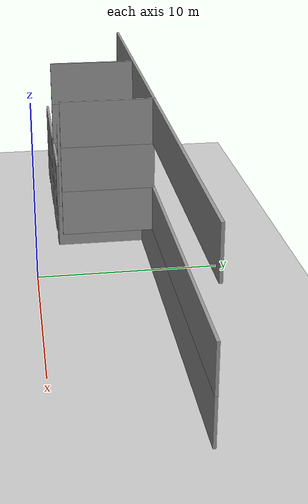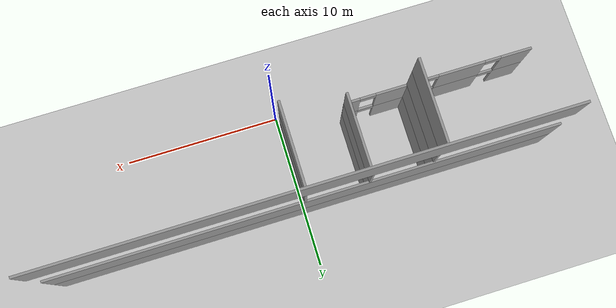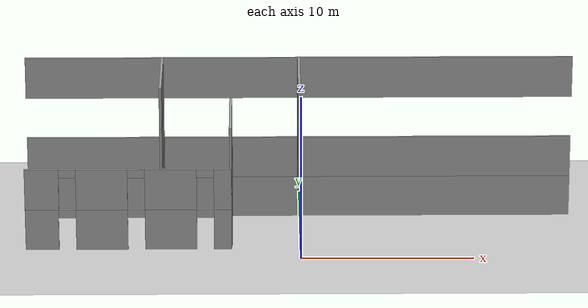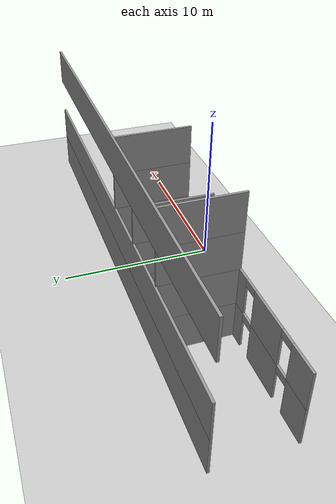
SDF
<sdf version="1.6">
 <world name="default">
  <model name="ground_plane">
   <static>1</static>
   <link name="link">
    <collision name="collision">
     <geometry><plane><normal>0 0 1</normal><size>100 100</size></plane></geometry>
     <surface>
      <contact><collide_bitmask>65535</collide_bitmask></contact>
      <friction><ode><mu>100</mu><mu2>50</mu2></ode></friction>
     </surface>
    </collision>
    <visual name="visual">
     <cast_shadows>0</cast_shadows>
     <geometry><plane><normal>0 0 1</normal><size>100 100</size></plane></geometry>
     <material>
      <script><uri>file://media/materials/scripts/gazebo.material</uri><name>Gazebo/Grey</name></script>
     </material>
    </visual>
   </link>
  </model>
  <model name="floor2plan_v2">
   <link name="Wall_0">
    <pose>1e-06 6.4365 0 0 -0 0</pose>
    <visual name="Wall_0_Visual">
     <pose>0 0 1.25 0 -0 0</pose>
     <geometry><box><size>32 0.15 2.5</size></box></geometry>
     <material>
      <script><uri>file://media/materials/scripts/gazebo.material</uri><name>Gazebo/Grey</name></script>
      <ambient>1 1 1 1</ambient>
      <shader type="pixel"/>
      <diffuse>0.7 0.7 0.7 1</diffuse>
      <specular>0.01 0.01 0.01 1</specular>
      <emissive>0 0 0 1</emissive>
     </material>
     <meta><layer>0</layer></meta>
    </visual>
    <collision name="Wall_0_Collision">
     <pose>0 0 1.25 0 -0 0</pose>
     <geometry><box><size>32 0.15 2.5</size></box></geometry>
     <surface>
      <friction>
       <ode><mu>1</mu><mu2>1</mu2><fdir1>0 0 0</fdir1><slip1>0</slip1><slip2>0</slip2></ode>
       <torsional>
        <coefficient>1</coefficient>
        <patch_radius>0</patch_radius>
        <surface_radius>0</surface_radius>
        <use_patch_radius>1</use_patch_radius>
        <ode><slip>0</slip></ode>
       </torsional>
      </friction>
      <bounce><restitution_coefficient>0</restitution_coefficient><threshold>1e+06</threshold></bounce>
      <contact>
       <collide_without_contact>0</collide_without_contact>
       <collide_without_contact_bitmask>1</collide_without_contact_bitmask>
       <collide_bitmask>1</collide_bitmask>
       <ode>
        <soft_cfm>0</soft_cfm>
        <soft_erp>0.2</soft_erp>
        <kp>1e+13</kp>
        <kd>1</kd>
        <max_vel>0.01</max_vel>
        <min_depth>0</min_depth>
       </ode>
       <bullet>
        <split_impulse>1</split_impulse>
        <split_impulse_penetration_threshold>-0.01</split_impulse_penetration_threshold>
        <soft_cfm>0</soft_cfm>
        <soft_erp>0.2</soft_erp>
        <kp>1e+13</kp>
        <kd>1</kd>
       </bullet>
      </contact>
     </surface>
    </collision>
   </link>
   <link name="Wall_104">
    <pose>-7.9899 3.92772 5 0 0 -1.5708</pose>
    <visual name="Wall_104_Visual">
     <pose>0 0 1.25 0 -0 0</pose>
     <geometry><box><size>5 0.15 2.5</size></box></geometry>
     <material>
      <script><uri>file://media/materials/scripts/gazebo.material</uri><name>Gazebo/Grey</name></script>
      <ambient>1 1 1 1</ambient>
      <shader type="pixel"/>
      <diffuse>0.7 0.7 0.7 1</diffuse>
      <specular>0.01 0.01 0.01 1</specular>
      <emissive>0 0 0 1</emissive>
     </material>
     <meta><layer>2</layer></meta>
    </visual>
    <collision name="Wall_104_Collision">
     <pose>0 0 1.25 0 -0 0</pose>
     <geometry><box><size>5 0.15 2.5</size></box></geometry>
     <surface>
      <friction>
       <ode><mu>1</mu><mu2>1</mu2><fdir1>0 0 0</fdir1><slip1>0</slip1><slip2>0</slip2></ode>
       <torsional>
        <coefficient>1</coefficient>
        <patch_radius>0</patch_radius>
        <surface_radius>0</surface_radius>
        <use_patch_radius>1</use_patch_radius>
        <ode><slip>0</slip></ode>
       </torsional>
      </friction>
      <bounce><restitution_coefficient>0</restitution_coefficient><threshold>1e+06</threshold></bounce>
      <contact>
       <collide_without_contact>0</collide_without_contact>
       <collide_without_contact_bitmask>1</collide_without_contact_bitmask>
       <collide_bitmask>1</collide_bitmask>
       <ode>
        <soft_cfm>0</soft_cfm>
        <soft_erp>0.2</soft_erp>
        <kp>1e+13</kp>
        <kd>1</kd>
        <max_vel>0.01</max_vel>
        <min_depth>0</min_depth>
       </ode>
       <bullet>
        <split_impulse>1</split_impulse>
        <split_impulse_penetration_threshold>-0.01</split_impulse_penetration_threshold>
        <soft_cfm>0</soft_cfm>
        <soft_erp>0.2</soft_erp>
        <kp>1e+13</kp>
        <kd>1</kd>
       </bullet>
      </contact>
     </surface>
    </collision>
   </link>
   <link name="Wall_107">
    <pose>-3.99459 3.99 5 0 0 -1.5708</pose>
    <visual name="Wall_107_Visual">
     <pose>0 0 1.25 0 -0 0</pose>
     <geometry><box><size>5 0.15 2.5</size></box></geometry>
     <material>
      <script><uri>file://media/materials/scripts/gazebo.material</uri><name>Gazebo/Grey</name></script>
      <ambient>1 1 1 1</ambient>
      <shader type="pixel"/>
      <diffuse>0.7 0.7 0.7 1</diffuse>
      <specular>0.01 0.01 0.01 1</specular>
      <emissive>0 0 0 1</emissive>
     </material>
     <meta><layer>2</layer></meta>
    </visual>
    <collision name="Wall_107_Collision">
     <pose>0 0 1.25 0 -0 0</pose>
     <geometry><box><size>5 0.15 2.5</size></box></geometry>
     <surface>
      <friction>
       <ode><mu>1</mu><mu2>1</mu2><fdir1>0 0 0</fdir1><slip1>0</slip1><slip2>0</slip2></ode>
       <torsional>
        <coefficient>1</coefficient>
        <patch_radius>0</patch_radius>
        <surface_radius>0</surface_radius>
        <use_patch_radius>1</use_patch_radius>
        <ode><slip>0</slip></ode>
       </torsional>
      </friction>
      <bounce><restitution_coefficient>0</restitution_coefficient><threshold>1e+06</threshold></bounce>
      <contact>
       <collide_without_contact>0</collide_without_contact>
       <collide_without_contact_bitmask>1</collide_without_contact_bitmask>
       <collide_bitmask>1</collide_bitmask>
       <ode>
        <soft_cfm>0</soft_cfm>
        <soft_erp>0.2</soft_erp>
        <kp>1e+13</kp>
        <kd>1</kd>
        <max_vel>0.01</max_vel>
        <min_depth>0</min_depth>
       </ode>
       <bullet>
        <split_impulse>1</split_impulse>
        <split_impulse_penetration_threshold>-0.01</split_impulse_penetration_threshold>
        <soft_cfm>0</soft_cfm>
        <soft_erp>0.2</soft_erp>
        <kp>1e+13</kp>
        <kd>1</kd>
       </bullet>
      </contact>
     </surface>
    </collision>
   </link>
   <link name="Wall_108">
    <pose>-0.014591 3.97 5 0 0 -1.5708</pose>
    <visual name="Wall_108_Visual">
     <pose>0 0 1.25 0 -0 0</pose>
     <geometry><box><size>5 0.15 2.5</size></box></geometry>
     <material>
      <script><uri>file://media/materials/scripts/gazebo.material</uri><name>Gazebo/Grey</name></script>
      <ambient>1 1 1 1</ambient>
      <shader type="pixel"/>
      <diffuse>0.7 0.7 0.7 1</diffuse>
      <specular>0.01 0.01 0.01 1</specular>
      <emissive>0 0 0 1</emissive>
     </material>
     <meta><layer>2</layer></meta>
    </visual>
    <collision name="Wall_108_Collision">
     <pose>0 0 1.25 0 -0 0</pose>
     <geometry><box><size>5 0.15 2.5</size></box></geometry>
     <surface>
      <friction>
       <ode><mu>1</mu><mu2>1</mu2><fdir1>0 0 0</fdir1><slip1>0</slip1><slip2>0</slip2></ode>
       <torsional>
        <coefficient>1</coefficient>
        <patch_radius>0</patch_radius>
        <surface_radius>0</surface_radius>
        <use_patch_radius>1</use_patch_radius>
        <ode><slip>0</slip></ode>
       </torsional>
      </friction>
      <bounce><restitution_coefficient>0</restitution_coefficient><threshold>1e+06</threshold></bounce>
      <contact>
       <collide_without_contact>0</collide_without_contact>
       <collide_without_contact_bitmask>1</collide_without_contact_bitmask>
       <collide_bitmask>1</collide_bitmask>
       <ode>
        <soft_cfm>0</soft_cfm>
        <soft_erp>0.2</soft_erp>
        <kp>1e+13</kp>
        <kd>1</kd>
        <max_vel>0.01</max_vel>
        <min_depth>0</min_depth>
       </ode>
       <bullet>
        <split_impulse>1</split_impulse>
        <split_impulse_penetration_threshold>-0.01</split_impulse_penetration_threshold>
        <soft_cfm>0</soft_cfm>
        <soft_erp>0.2</soft_erp>
        <kp>1e+13</kp>
        <kd>1</kd>
       </bullet>
      </contact>
     </surface>
    </collision>
   </link>
   <link name="Wall_124">
    <pose>1e-06 6.4365 7.5 0 -0 0</pose>
    <visual name="Wall_124_Visual">
     <pose>0 0 1.25 0 -0 0</pose>
     <geometry><box><size>32 0.15 2.5</size></box></geometry>
     <material>
      <script><uri>file://media/materials/scripts/gazebo.material</uri><name>Gazebo/Grey</name></script>
      <ambient>1 1 1 1</ambient>
      <shader type="pixel"/>
      <diffuse>0.7 0.7 0.7 1</diffuse>
      <specular>0.01 0.01 0.01 1</specular>
      <emissive>0 0 0 1</emissive>
     </material>
     <meta><layer>3</layer></meta>
    </visual>
    <collision name="Wall_124_Collision">
     <pose>0 0 1.25 0 -0 0</pose>
     <geometry><box><size>32 0.15 2.5</size></box></geometry>
     <surface>
      <friction>
       <ode><mu>1</mu><mu2>1</mu2><fdir1>0 0 0</fdir1><slip1>0</slip1><slip2>0</slip2></ode>
       <torsional>
        <coefficient>1</coefficient>
        <patch_radius>0</patch_radius>
        <surface_radius>0</surface_radius>
        <use_patch_radius>1</use_patch_radius>
        <ode><slip>0</slip></ode>
       </torsional>
      </friction>
      <bounce><restitution_coefficient>0</restitution_coefficient><threshold>1e+06</threshold></bounce>
      <contact>
       <collide_without_contact>0</collide_without_contact>
       <collide_without_contact_bitmask>1</collide_without_contact_bitmask>
       <collide_bitmask>1</collide_bitmask>
       <ode>
        <soft_cfm>0</soft_cfm>
        <soft_erp>0.2</soft_erp>
        <kp>1e+13</kp>
        <kd>1</kd>
        <max_vel>0.01</max_vel>
        <min_depth>0</min_depth>
       </ode>
       <bullet>
        <split_impulse>1</split_impulse>
        <split_impulse_penetration_threshold>-0.01</split_impulse_penetration_threshold>
        <soft_cfm>0</soft_cfm>
        <soft_erp>0.2</soft_erp>
        <kp>1e+13</kp>
        <kd>1</kd>
       </bullet>
      </contact>
     </surface>
    </collision>
   </link>
   <link name="Wall_130">
    <pose>-7.9899 3.92772 7.5 0 0 -1.5708</pose>
    <visual name="Wall_130_Visual">
     <pose>0 0 1.25 0 -0 0</pose>
     <geometry><box><size>5 0.15 2.5</size></box></geometry>
     <material>
      <script><uri>file://media/materials/scripts/gazebo.material</uri><name>Gazebo/Grey</name></script>
      <ambient>1 1 1 1</ambient>
      <shader type="pixel"/>
      <diffuse>0.7 0.7 0.7 1</diffuse>
      <specular>0.01 0.01 0.01 1</specular>
      <emissive>0 0 0 1</emissive>
     </material>
     <meta><layer>3</layer></meta>
    </visual>
    <collision name="Wall_130_Collision">
     <pose>0 0 1.25 0 -0 0</pose>
     <geometry><box><size>5 0.15 2.5</size></box></geometry>
     <surface>
      <friction>
       <ode><mu>1</mu><mu2>1</mu2><fdir1>0 0 0</fdir1><slip1>0</slip1><slip2>0</slip2></ode>
       <torsional>
        <coefficient>1</coefficient>
        <patch_radius>0</patch_radius>
        <surface_radius>0</surface_radius>
        <use_patch_radius>1</use_patch_radius>
        <ode><slip>0</slip></ode>
       </torsional>
      </friction>
      <bounce><restitution_coefficient>0</restitution_coefficient><threshold>1e+06</threshold></bounce>
      <contact>
       <collide_without_contact>0</collide_without_contact>
       <collide_without_contact_bitmask>1</collide_without_contact_bitmask>
       <collide_bitmask>1</collide_bitmask>
       <ode>
        <soft_cfm>0</soft_cfm>
        <soft_erp>0.2</soft_erp>
        <kp>1e+13</kp>
        <kd>1</kd>
        <max_vel>0.01</max_vel>
        <min_depth>0</min_depth>
       </ode>
       <bullet>
        <split_impulse>1</split_impulse>
        <split_impulse_penetration_threshold>-0.01</split_impulse_penetration_threshold>
        <soft_cfm>0</soft_cfm>
        <soft_erp>0.2</soft_erp>
        <kp>1e+13</kp>
        <kd>1</kd>
       </bullet>
      </contact>
     </surface>
    </collision>
   </link>
   <link name="Wall_134">
    <pose>-0.014591 3.97 7.5 0 0 -1.5708</pose>
    <visual name="Wall_134_Visual">
     <pose>0 0 1.25 0 -0 0</pose>
     <geometry><box><size>5 0.15 2.5</size></box></geometry>
     <material>
      <script><uri>file://media/materials/scripts/gazebo.material</uri><name>Gazebo/Grey</name></script>
      <ambient>1 1 1 1</ambient>
      <shader type="pixel"/>
      <diffuse>0.7 0.7 0.7 1</diffuse>
      <specular>0.01 0.01 0.01 1</specular>
      <emissive>0 0 0 1</emissive>
     </material>
     <meta><layer>3</layer></meta>
    </visual>
    <collision name="Wall_134_Collision">
     <pose>0 0 1.25 0 -0 0</pose>
     <geometry><box><size>5 0.15 2.5</size></box></geometry>
     <surface>
      <friction>
       <ode><mu>1</mu><mu2>1</mu2><fdir1>0 0 0</fdir1><slip1>0</slip1><slip2>0</slip2></ode>
       <torsional>
        <coefficient>1</coefficient>
        <patch_radius>0</patch_radius>
        <surface_radius>0</surface_radius>
        <use_patch_radius>1</use_patch_radius>
        <ode><slip>0</slip></ode>
       </torsional>
      </friction>
      <bounce><restitution_coefficient>0</restitution_coefficient><threshold>1e+06</threshold></bounce>
      <contact>
       <collide_without_contact>0</collide_without_contact>
       <collide_without_contact_bitmask>1</collide_without_contact_bitmask>
       <collide_bitmask>1</collide_bitmask>
       <ode>
        <soft_cfm>0</soft_cfm>
        <soft_erp>0.2</soft_erp>
        <kp>1e+13</kp>
        <kd>1</kd>
        <max_vel>0.01</max_vel>
        <min_depth>0</min_depth>
       </ode>
       <bullet>
        <split_impulse>1</split_impulse>
        <split_impulse_penetration_threshold>-0.01</split_impulse_penetration_threshold>
        <soft_cfm>0</soft_cfm>
        <soft_erp>0.2</soft_erp>
        <kp>1e+13</kp>
        <kd>1</kd>
       </bullet>
      </contact>
     </surface>
    </collision>
   </link>
   <link name="Wall_14">
    <pose>-9.9294 1.47672 0 0 -0 0</pose>
    <visual name="Wall_14_Visual_0">
     <pose>-5.008 0 1.25 0 -0 0</pose>
     <geometry><box><size>1.941 0.15 2.5</size></box></geometry>
     <material>
      <script><uri>file://media/materials/scripts/gazebo.material</uri><name>Gazebo/Grey</name></script>
      <ambient>1 1 1 1</ambient>
      <shader type="pixel"/>
      <diffuse>0.7 0.7 0.7 1</diffuse>
      <specular>0.01 0.01 0.01 1</specular>
      <emissive>0 0 0 1</emissive>
     </material>
     <meta><layer>0</layer></meta>
    </visual>
    <visual name="Wall_14_Visual_1">
     <pose>-1.5365 0 1.25 0 -0 0</pose>
     <geometry><box><size>3.002 0.15 2.5</size></box></geometry>
     <material>
      <script><uri>file://media/materials/scripts/gazebo.material</uri><name>Gazebo/Grey</name></script>
      <ambient>1 1 1 1</ambient>
      <shader type="pixel"/>
      <diffuse>0.7 0.7 0.7 1</diffuse>
      <specular>0.01 0.01 0.01 1</specular>
      <emissive>0 0 0 1</emissive>
     </material>
     <meta><layer>0</layer></meta>
    </visual>
    <visual name="Wall_14_Visual_3">
     <pose>5.4725 0 1.25 0 -0 0</pose>
     <geometry><box><size>1.012 0.15 2.5</size></box></geometry>
     <material>
      <script><uri>file://media/materials/scripts/gazebo.material</uri><name>Gazebo/Grey</name></script>
      <ambient>1 1 1 1</ambient>
      <shader type="pixel"/>
      <diffuse>0.7 0.7 0.7 1</diffuse>
      <specular>0.01 0.01 0.01 1</specular>
      <emissive>0 0 0 1</emissive>
     </material>
     <meta><layer>0</layer></meta>
    </visual>
    <visual name="Wall_14_Visual_2">
     <pose>2.4655 0 1.25 0 -0 0</pose>
     <geometry><box><size>3.002 0.15 2.5</size></box></geometry>
     <material>
      <script><uri>file://media/materials/scripts/gazebo.material</uri><name>Gazebo/Grey</name></script>
      <ambient>1 1 1 1</ambient>
      <shader type="pixel"/>
      <diffuse>0.7 0.7 0.7 1</diffuse>
      <specular>0.01 0.01 0.01 1</specular>
      <emissive>0 0 0 1</emissive>
     </material>
     <meta><layer>0</layer></meta>
    </visual>
    <visual name="Wall_14_Visual_4">
     <pose>-3.5375 0 2.25 0 -0 0</pose>
     <geometry><box><size>1 0.15 0.5</size></box></geometry>
     <material>
      <script><uri>file://media/materials/scripts/gazebo.material</uri><name>Gazebo/Grey</name></script>
      <ambient>1 1 1 1</ambient>
      <shader type="pixel"/>
      <diffuse>0.7 0.7 0.7 1</diffuse>
      <specular>0.01 0.01 0.01 1</specular>
      <emissive>0 0 0 1</emissive>
     </material>
     <meta><layer>0</layer></meta>
    </visual>
    <visual name="Wall_14_Visual_5">
     <pose>0.4645 0 2.25 0 -0 0</pose>
     <geometry><box><size>1 0.15 0.5</size></box></geometry>
     <material>
      <script><uri>file://media/materials/scripts/gazebo.material</uri><name>Gazebo/Grey</name></script>
      <ambient>1 1 1 1</ambient>
      <shader type="pixel"/>
      <diffuse>0.7 0.7 0.7 1</diffuse>
      <specular>0.01 0.01 0.01 1</specular>
      <emissive>0 0 0 1</emissive>
     </material>
     <meta><layer>0</layer></meta>
    </visual>
    <visual name="Wall_14_Visual_6">
     <pose>4.4665 0 2.25 0 -0 0</pose>
     <geometry><box><size>1 0.15 0.5</size></box></geometry>
     <material>
      <script><uri>file://media/materials/scripts/gazebo.material</uri><name>Gazebo/Grey</name></script>
      <ambient>1 1 1 1</ambient>
      <shader type="pixel"/>
      <diffuse>0.7 0.7 0.7 1</diffuse>
      <specular>0.01 0.01 0.01 1</specular>
      <emissive>0 0 0 1</emissive>
     </material>
     <meta><layer>0</layer></meta>
    </visual>
    <collision name="Wall_14_Collision_0">
     <pose>-5.008 0 1.25 0 -0 0</pose>
     <geometry><box><size>1.941 0.15 2.5</size></box></geometry>
     <surface>
      <friction>
       <ode><mu>1</mu><mu2>1</mu2><fdir1>0 0 0</fdir1><slip1>0</slip1><slip2>0</slip2></ode>
       <torsional>
        <coefficient>1</coefficient>
        <patch_radius>0</patch_radius>
        <surface_radius>0</surface_radius>
        <use_patch_radius>1</use_patch_radius>
        <ode><slip>0</slip></ode>
       </torsional>
      </friction>
      <bounce><restitution_coefficient>0</restitution_coefficient><threshold>1e+06</threshold></bounce>
      <contact>
       <collide_without_contact>0</collide_without_contact>
       <collide_without_contact_bitmask>1</collide_without_contact_bitmask>
       <collide_bitmask>1</collide_bitmask>
       <ode>
        <soft_cfm>0</soft_cfm>
        <soft_erp>0.2</soft_erp>
        <kp>1e+13</kp>
        <kd>1</kd>
        <max_vel>0.01</max_vel>
        <min_depth>0</min_depth>
       </ode>
       <bullet>
        <split_impulse>1</split_impulse>
        <split_impulse_penetration_threshold>-0.01</split_impulse_penetration_threshold>
        <soft_cfm>0</soft_cfm>
        <soft_erp>0.2</soft_erp>
        <kp>1e+13</kp>
        <kd>1</kd>
       </bullet>
      </contact>
     </surface>
    </collision>
    <collision name="Wall_14_Collision_1">
     <pose>-1.5365 0 1.25 0 -0 0</pose>
     <geometry><box><size>3.002 0.15 2.5</size></box></geometry>
     <surface>
      <friction>
       <ode><mu>1</mu><mu2>1</mu2><fdir1>0 0 0</fdir1><slip1>0</slip1><slip2>0</slip2></ode>
       <torsional>
        <coefficient>1</coefficient>
        <patch_radius>0</patch_radius>
        <surface_radius>0</surface_radius>
        <use_patch_radius>1</use_patch_radius>
        <ode><slip>0</slip></ode>
       </torsional>
      </friction>
      <bounce><restitution_coefficient>0</restitution_coefficient><threshold>1e+06</threshold></bounce>
      <contact>
       <collide_without_contact>0</collide_without_contact>
       <collide_without_contact_bitmask>1</collide_without_contact_bitmask>
       <collide_bitmask>1</collide_bitmask>
       <ode>
        <soft_cfm>0</soft_cfm>
        <soft_erp>0.2</soft_erp>
        <kp>1e+13</kp>
        <kd>1</kd>
        <max_vel>0.01</max_vel>
        <min_depth>0</min_depth>
       </ode>
       <bullet>
        <split_impulse>1</split_impulse>
        <split_impulse_penetration_threshold>-0.01</split_impulse_penetration_threshold>
        <soft_cfm>0</soft_cfm>
        <soft_erp>0.2</soft_erp>
        <kp>1e+13</kp>
        <kd>1</kd>
       </bullet>
      </contact>
     </surface>
    </collision>
    <collision name="Wall_14_Collision_2">
     <pose>2.4655 0 1.25 0 -0 0</pose>
     <geometry><box><size>3.002 0.15 2.5</size></box></geometry>
     <surface>
      <friction>
       <ode><mu>1</mu><mu2>1</mu2><fdir1>0 0 0</fdir1><slip1>0</slip1><slip2>0</slip2></ode>
       <torsional>
        <coefficient>1</coefficient>
        <patch_radius>0</patch_radius>
        <surface_radius>0</surface_radius>
        <use_patch_radius>1</use_patch_radius>
        <ode><slip>0</slip></ode>
       </torsional>
      </friction>
      <bounce><restitution_coefficient>0</restitution_coefficient><threshold>1e+06</threshold></bounce>
      <contact>
       <collide_without_contact>0</collide_without_contact>
       <collide_without_contact_bitmask>1</collide_without_contact_bitmask>
       <collide_bitmask>1</collide_bitmask>
       <ode>
        <soft_cfm>0</soft_cfm>
        <soft_erp>0.2</soft_erp>
        <kp>1e+13</kp>
        <kd>1</kd>
        <max_vel>0.01</max_vel>
        <min_depth>0</min_depth>
       </ode>
       <bullet>
        <split_impulse>1</split_impulse>
        <split_impulse_penetration_threshold>-0.01</split_impulse_penetration_threshold>
        <soft_cfm>0</soft_cfm>
        <soft_erp>0.2</soft_erp>
        <kp>1e+13</kp>
        <kd>1</kd>
       </bullet>
      </contact>
     </surface>
    </collision>
    <collision name="Wall_14_Collision_3">
     <pose>5.4725 0 1.25 0 -0 0</pose>
     <geometry><box><size>1.012 0.15 2.5</size></box></geometry>
     <surface>
      <friction>
       <ode><mu>1</mu><mu2>1</mu2><fdir1>0 0 0</fdir1><slip1>0</slip1><slip2>0</slip2></ode>
       <torsional>
        <coefficient>1</coefficient>
        <patch_radius>0</patch_radius>
        <surface_radius>0</surface_radius>
        <use_patch_radius>1</use_patch_radius>
        <ode><slip>0</slip></ode>
       </torsional>
      </friction>
      <bounce><restitution_coefficient>0</restitution_coefficient><threshold>1e+06</threshold></bounce>
      <contact>
       <collide_without_contact>0</collide_without_contact>
       <collide_without_contact_bitmask>1</collide_without_contact_bitmask>
       <collide_bitmask>1</collide_bitmask>
       <ode>
        <soft_cfm>0</soft_cfm>
        <soft_erp>0.2</soft_erp>
        <kp>1e+13</kp>
        <kd>1</kd>
        <max_vel>0.01</max_vel>
        <min_depth>0</min_depth>
       </ode>
       <bullet>
        <split_impulse>1</split_impulse>
        <split_impulse_penetration_threshold>-0.01</split_impulse_penetration_threshold>
        <soft_cfm>0</soft_cfm>
        <soft_erp>0.2</soft_erp>
        <kp>1e+13</kp>
        <kd>1</kd>
       </bullet>
      </contact>
     </surface>
    </collision>
    <collision name="Wall_14_Collision_4">
     <pose>-3.5375 0 2.25 0 -0 0</pose>
     <geometry><box><size>1 0.15 0.5</size></box></geometry>
     <surface>
      <friction>
       <ode><mu>1</mu><mu2>1</mu2><fdir1>0 0 0</fdir1><slip1>0</slip1><slip2>0</slip2></ode>
       <torsional>
        <coefficient>1</coefficient>
        <patch_radius>0</patch_radius>
        <surface_radius>0</surface_radius>
        <use_patch_radius>1</use_patch_radius>
        <ode><slip>0</slip></ode>
       </torsional>
      </friction>
      <bounce><restitution_coefficient>0</restitution_coefficient><threshold>1e+06</threshold></bounce>
      <contact>
       <collide_without_contact>0</collide_without_contact>
       <collide_without_contact_bitmask>1</collide_without_contact_bitmask>
       <collide_bitmask>1</collide_bitmask>
       <ode>
        <soft_cfm>0</soft_cfm>
        <soft_erp>0.2</soft_erp>
        <kp>1e+13</kp>
        <kd>1</kd>
        <max_vel>0.01</max_vel>
        <min_depth>0</min_depth>
       </ode>
       <bullet>
        <split_impulse>1</split_impulse>
        <split_impulse_penetration_threshold>-0.01</split_impulse_penetration_threshold>
        <soft_cfm>0</soft_cfm>
        <soft_erp>0.2</soft_erp>
        <kp>1e+13</kp>
        <kd>1</kd>
       </bullet>
      </contact>
     </surface>
    </collision>
    <collision name="Wall_14_Collision_5">
     <pose>0.4645 0 2.25 0 -0 0</pose>
     <geometry><box><size>1 0.15 0.5</size></box></geometry>
     <surface>
      <friction>
       <ode><mu>1</mu><mu2>1</mu2><fdir1>0 0 0</fdir1><slip1>0</slip1><slip2>0</slip2></ode>
       <torsional>
        <coefficient>1</coefficient>
        <patch_radius>0</patch_radius>
        <surface_radius>0</surface_radius>
        <use_patch_radius>1</use_patch_radius>
        <ode><slip>0</slip></ode>
       </torsional>
      </friction>
      <bounce><restitution_coefficient>0</restitution_coefficient><threshold>1e+06</threshold></bounce>
      <contact>
       <collide_without_contact>0</collide_without_contact>
       <collide_without_contact_bitmask>1</collide_without_contact_bitmask>
       <collide_bitmask>1</collide_bitmask>
       <ode>
        <soft_cfm>0</soft_cfm>
        <soft_erp>0.2</soft_erp>
        <kp>1e+13</kp>
        <kd>1</kd>
        <max_vel>0.01</max_vel>
        <min_depth>0</min_depth>
       </ode>
       <bullet>
        <split_impulse>1</split_impulse>
        <split_impulse_penetration_threshold>-0.01</split_impulse_penetration_threshold>
        <soft_cfm>0</soft_cfm>
        <soft_erp>0.2</soft_erp>
        <kp>1e+13</kp>
        <kd>1</kd>
       </bullet>
      </contact>
     </surface>
    </collision>
    <collision name="Wall_14_Collision_6">
     <pose>4.4665 0 2.25 0 -0 0</pose>
     <geometry><box><size>1 0.15 0.5</size></box></geometry>
     <surface>
      <friction>
       <ode><mu>1</mu><mu2>1</mu2><fdir1>0 0 0</fdir1><slip1>0</slip1><slip2>0</slip2></ode>
       <torsional>
        <coefficient>1</coefficient>
        <patch_radius>0</patch_radius>
        <surface_radius>0</surface_radius>
        <use_patch_radius>1</use_patch_radius>
        <ode><slip>0</slip></ode>
       </torsional>
      </friction>
      <bounce><restitution_coefficient>0</restitution_coefficient><threshold>1e+06</threshold></bounce>
      <contact>
       <collide_without_contact>0</collide_without_contact>
       <collide_without_contact_bitmask>1</collide_without_contact_bitmask>
       <collide_bitmask>1</collide_bitmask>
       <ode>
        <soft_cfm>0</soft_cfm>
        <soft_erp>0.2</soft_erp>
        <kp>1e+13</kp>
        <kd>1</kd>
        <max_vel>0.01</max_vel>
        <min_depth>0</min_depth>
       </ode>
       <bullet>
        <split_impulse>1</split_impulse>
        <split_impulse_penetration_threshold>-0.01</split_impulse_penetration_threshold>
        <soft_cfm>0</soft_cfm>
        <soft_erp>0.2</soft_erp>
        <kp>1e+13</kp>
        <kd>1</kd>
       </bullet>
      </contact>
     </surface>
    </collision>
   </link>
   <link name="Wall_18">
    <pose>-7.9899 3.92772 0 0 0 -1.5708</pose>
    <visual name="Wall_18_Visual">
     <pose>0 0 1.25 0 -0 0</pose>
     <geometry><box><size>5 0.15 2.5</size></box></geometry>
     <material>
      <script><uri>file://media/materials/scripts/gazebo.material</uri><name>Gazebo/Grey</name></script>
      <ambient>1 1 1 1</ambient>
      <shader type="pixel"/>
      <diffuse>0.7 0.7 0.7 1</diffuse>
      <specular>0.01 0.01 0.01 1</specular>
      <emissive>0 0 0 1</emissive>
     </material>
     <meta><layer>0</layer></meta>
    </visual>
    <collision name="Wall_18_Collision">
     <pose>0 0 1.25 0 -0 0</pose>
     <geometry><box><size>5 0.15 2.5</size></box></geometry>
     <surface>
      <friction>
       <ode><mu>1</mu><mu2>1</mu2><fdir1>0 0 0</fdir1><slip1>0</slip1><slip2>0</slip2></ode>
       <torsional>
        <coefficient>1</coefficient>
        <patch_radius>0</patch_radius>
        <surface_radius>0</surface_radius>
        <use_patch_radius>1</use_patch_radius>
        <ode><slip>0</slip></ode>
       </torsional>
      </friction>
      <bounce><restitution_coefficient>0</restitution_coefficient><threshold>1e+06</threshold></bounce>
      <contact>
       <collide_without_contact>0</collide_without_contact>
       <collide_without_contact_bitmask>1</collide_without_contact_bitmask>
       <collide_bitmask>1</collide_bitmask>
       <ode>
        <soft_cfm>0</soft_cfm>
        <soft_erp>0.2</soft_erp>
        <kp>1e+13</kp>
        <kd>1</kd>
        <max_vel>0.01</max_vel>
        <min_depth>0</min_depth>
       </ode>
       <bullet>
        <split_impulse>1</split_impulse>
        <split_impulse_penetration_threshold>-0.01</split_impulse_penetration_threshold>
        <soft_cfm>0</soft_cfm>
        <soft_erp>0.2</soft_erp>
        <kp>1e+13</kp>
        <kd>1</kd>
       </bullet>
      </contact>
     </surface>
    </collision>
   </link>
   <link name="Wall_33">
    <pose>-3.99459 3.944 0 0 0 -1.5708</pose>
    <visual name="Wall_33_Visual">
     <pose>0 0 1.25 0 -0 0</pose>
     <geometry><box><size>5 0.15 2.5</size></box></geometry>
     <material>
      <script><uri>file://media/materials/scripts/gazebo.material</uri><name>Gazebo/Grey</name></script>
      <ambient>1 1 1 1</ambient>
      <shader type="pixel"/>
      <diffuse>0.7 0.7 0.7 1</diffuse>
      <specular>0.01 0.01 0.01 1</specular>
      <emissive>0 0 0 1</emissive>
     </material>
     <meta><layer>0</layer></meta>
    </visual>
    <collision name="Wall_33_Collision">
     <pose>0 0 1.25 0 -0 0</pose>
     <geometry><box><size>5 0.15 2.5</size></box></geometry>
     <surface>
      <friction>
       <ode><mu>1</mu><mu2>1</mu2><fdir1>0 0 0</fdir1><slip1>0</slip1><slip2>0</slip2></ode>
       <torsional>
        <coefficient>1</coefficient>
        <patch_radius>0</patch_radius>
        <surface_radius>0</surface_radius>
        <use_patch_radius>1</use_patch_radius>
        <ode><slip>0</slip></ode>
       </torsional>
      </friction>
      <bounce><restitution_coefficient>0</restitution_coefficient><threshold>1e+06</threshold></bounce>
      <contact>
       <collide_without_contact>0</collide_without_contact>
       <collide_without_contact_bitmask>1</collide_without_contact_bitmask>
       <collide_bitmask>1</collide_bitmask>
       <ode>
        <soft_cfm>0</soft_cfm>
        <soft_erp>0.2</soft_erp>
        <kp>1e+13</kp>
        <kd>1</kd>
        <max_vel>0.01</max_vel>
        <min_depth>0</min_depth>
       </ode>
       <bullet>
        <split_impulse>1</split_impulse>
        <split_impulse_penetration_threshold>-0.01</split_impulse_penetration_threshold>
        <soft_cfm>0</soft_cfm>
        <soft_erp>0.2</soft_erp>
        <kp>1e+13</kp>
        <kd>1</kd>
       </bullet>
      </contact>
     </surface>
    </collision>
   </link>
   <link name="Wall_72">
    <pose>1e-06 6.4365 2.5 0 -0 0</pose>
    <visual name="Wall_72_Visual">
     <pose>0 0 1.25 0 -0 0</pose>
     <geometry><box><size>32 0.15 2.5</size></box></geometry>
     <material>
      <script><uri>file://media/materials/scripts/gazebo.material</uri><name>Gazebo/Grey</name></script>
      <ambient>1 1 1 1</ambient>
      <shader type="pixel"/>
      <diffuse>0.7 0.7 0.7 1</diffuse>
      <specular>0.01 0.01 0.01 1</specular>
      <emissive>0 0 0 1</emissive>
     </material>
     <meta><layer>1</layer></meta>
    </visual>
    <collision name="Wall_72_Collision">
     <pose>0 0 1.25 0 -0 0</pose>
     <geometry><box><size>32 0.15 2.5</size></box></geometry>
     <surface>
      <friction>
       <ode><mu>1</mu><mu2>1</mu2><fdir1>0 0 0</fdir1><slip1>0</slip1><slip2>0</slip2></ode>
       <torsional>
        <coefficient>1</coefficient>
        <patch_radius>0</patch_radius>
        <surface_radius>0</surface_radius>
        <use_patch_radius>1</use_patch_radius>
        <ode><slip>0</slip></ode>
       </torsional>
      </friction>
      <bounce><restitution_coefficient>0</restitution_coefficient><threshold>1e+06</threshold></bounce>
      <contact>
       <collide_without_contact>0</collide_without_contact>
       <collide_without_contact_bitmask>1</collide_without_contact_bitmask>
       <collide_bitmask>1</collide_bitmask>
       <ode>
        <soft_cfm>0</soft_cfm>
        <soft_erp>0.2</soft_erp>
        <kp>1e+13</kp>
        <kd>1</kd>
        <max_vel>0.01</max_vel>
        <min_depth>0</min_depth>
       </ode>
       <bullet>
        <split_impulse>1</split_impulse>
        <split_impulse_penetration_threshold>-0.01</split_impulse_penetration_threshold>
        <soft_cfm>0</soft_cfm>
        <soft_erp>0.2</soft_erp>
        <kp>1e+13</kp>
        <kd>1</kd>
       </bullet>
      </contact>
     </surface>
    </collision>
   </link>
   <link name="Wall_76">
    <pose>-9.9294 1.47672 2.5 0 -0 0</pose>
    <visual name="Wall_76_Visual_0">
     <pose>-4.9965 0 1.25 0 -0 0</pose>
     <geometry><box><size>1.964 0.15 2.5</size></box></geometry>
     <material>
      <script><uri>file://media/materials/scripts/gazebo.material</uri><name>Gazebo/Grey</name></script>
      <ambient>1 1 1 1</ambient>
      <shader type="pixel"/>
      <diffuse>0.7 0.7 0.7 1</diffuse>
      <specular>0.01 0.01 0.01 1</specular>
      <emissive>0 0 0 1</emissive>
     </material>
     <meta><layer>1</layer></meta>
    </visual>
    <visual name="Wall_76_Visual_1">
     <pose>-1.525 0 1.25 0 -0 0</pose>
     <geometry><box><size>2.979 0.15 2.5</size></box></geometry>
     <material>
      <script><uri>file://media/materials/scripts/gazebo.material</uri><name>Gazebo/Grey</name></script>
      <ambient>1 1 1 1</ambient>
      <shader type="pixel"/>
      <diffuse>0.7 0.7 0.7 1</diffuse>
      <specular>0.01 0.01 0.01 1</specular>
      <emissive>0 0 0 1</emissive>
     </material>
     <meta><layer>1</layer></meta>
    </visual>
    <visual name="Wall_76_Visual_2">
     <pose>2.4655 0 1.25 0 -0 0</pose>
     <geometry><box><size>3.002 0.15 2.5</size></box></geometry>
     <material>
      <script><uri>file://media/materials/scripts/gazebo.material</uri><name>Gazebo/Grey</name></script>
      <ambient>1 1 1 1</ambient>
      <shader type="pixel"/>
      <diffuse>0.7 0.7 0.7 1</diffuse>
      <specular>0.01 0.01 0.01 1</specular>
      <emissive>0 0 0 1</emissive>
     </material>
     <meta><layer>1</layer></meta>
    </visual>
    <visual name="Wall_76_Visual_4">
     <pose>-3.5145 0 2.25 0 -0 0</pose>
     <geometry><box><size>1 0.15 0.5</size></box></geometry>
     <material>
      <script><uri>file://media/materials/scripts/gazebo.material</uri><name>Gazebo/Grey</name></script>
      <ambient>1 1 1 1</ambient>
      <shader type="pixel"/>
      <diffuse>0.7 0.7 0.7 1</diffuse>
      <specular>0.01 0.01 0.01 1</specular>
      <emissive>0 0 0 1</emissive>
     </material>
     <meta><layer>1</layer></meta>
    </visual>
    <visual name="Wall_76_Visual_3">
     <pose>5.4725 0 1.25 0 -0 0</pose>
     <geometry><box><size>1.012 0.15 2.5</size></box></geometry>
     <material>
      <script><uri>file://media/materials/scripts/gazebo.material</uri><name>Gazebo/Grey</name></script>
      <ambient>1 1 1 1</ambient>
      <shader type="pixel"/>
      <diffuse>0.7 0.7 0.7 1</diffuse>
      <specular>0.01 0.01 0.01 1</specular>
      <emissive>0 0 0 1</emissive>
     </material>
     <meta><layer>1</layer></meta>
    </visual>
    <visual name="Wall_76_Visual_5">
     <pose>0.4645 0 2.25 0 -0 0</pose>
     <geometry><box><size>1 0.15 0.5</size></box></geometry>
     <material>
      <script><uri>file://media/materials/scripts/gazebo.material</uri><name>Gazebo/Grey</name></script>
      <ambient>1 1 1 1</ambient>
      <shader type="pixel"/>
      <diffuse>0.7 0.7 0.7 1</diffuse>
      <specular>0.01 0.01 0.01 1</specular>
      <emissive>0 0 0 1</emissive>
     </material>
     <meta><layer>1</layer></meta>
    </visual>
    <visual name="Wall_76_Visual_6">
     <pose>4.4665 0 2.25 0 -0 0</pose>
     <geometry><box><size>1 0.15 0.5</size></box></geometry>
     <material>
      <script><uri>file://media/materials/scripts/gazebo.material</uri><name>Gazebo/Grey</name></script>
      <ambient>1 1 1 1</ambient>
      <shader type="pixel"/>
      <diffuse>0.7 0.7 0.7 1</diffuse>
      <specular>0.01 0.01 0.01 1</specular>
      <emissive>0 0 0 1</emissive>
     </material>
     <meta><layer>1</layer></meta>
    </visual>
    <collision name="Wall_76_Collision_0">
     <pose>-4.9965 0 1.25 0 -0 0</pose>
     <geometry><box><size>1.964 0.15 2.5</size></box></geometry>
     <surface>
      <friction>
       <ode><mu>1</mu><mu2>1</mu2><fdir1>0 0 0</fdir1><slip1>0</slip1><slip2>0</slip2></ode>
       <torsional>
        <coefficient>1</coefficient>
        <patch_radius>0</patch_radius>
        <surface_radius>0</surface_radius>
        <use_patch_radius>1</use_patch_radius>
        <ode><slip>0</slip></ode>
       </torsional>
      </friction>
      <bounce><restitution_coefficient>0</restitution_coefficient><threshold>1e+06</threshold></bounce>
      <contact>
       <collide_without_contact>0</collide_without_contact>
       <collide_without_contact_bitmask>1</collide_without_contact_bitmask>
       <collide_bitmask>1</collide_bitmask>
       <ode>
        <soft_cfm>0</soft_cfm>
        <soft_erp>0.2</soft_erp>
        <kp>1e+13</kp>
        <kd>1</kd>
        <max_vel>0.01</max_vel>
        <min_depth>0</min_depth>
       </ode>
       <bullet>
        <split_impulse>1</split_impulse>
        <split_impulse_penetration_threshold>-0.01</split_impulse_penetration_threshold>
        <soft_cfm>0</soft_cfm>
        <soft_erp>0.2</soft_erp>
        <kp>1e+13</kp>
        <kd>1</kd>
       </bullet>
      </contact>
     </surface>
    </collision>
    <collision name="Wall_76_Collision_3">
     <pose>5.4725 0 1.25 0 -0 0</pose>
     <geometry><box><size>1.012 0.15 2.5</size></box></geometry>
     <surface>
      <friction>
       <ode><mu>1</mu><mu2>1</mu2><fdir1>0 0 0</fdir1><slip1>0</slip1><slip2>0</slip2></ode>
       <torsional>
        <coefficient>1</coefficient>
        <patch_radius>0</patch_radius>
        <surface_radius>0</surface_radius>
        <use_patch_radius>1</use_patch_radius>
        <ode><slip>0</slip></ode>
       </torsional>
      </friction>
      <bounce><restitution_coefficient>0</restitution_coefficient><threshold>1e+06</threshold></bounce>
      <contact>
       <collide_without_contact>0</collide_without_contact>
       <collide_without_contact_bitmask>1</collide_without_contact_bitmask>
       <collide_bitmask>1</collide_bitmask>
       <ode>
        <soft_cfm>0</soft_cfm>
        <soft_erp>0.2</soft_erp>
        <kp>1e+13</kp>
        <kd>1</kd>
        <max_vel>0.01</max_vel>
        <min_depth>0</min_depth>
       </ode>
       <bullet>
        <split_impulse>1</split_impulse>
        <split_impulse_penetration_threshold>-0.01</split_impulse_penetration_threshold>
        <soft_cfm>0</soft_cfm>
        <soft_erp>0.2</soft_erp>
        <kp>1e+13</kp>
        <kd>1</kd>
       </bullet>
      </contact>
     </surface>
    </collision>
    <collision name="Wall_76_Collision_1">
     <pose>-1.525 0 1.25 0 -0 0</pose>
     <geometry><box><size>2.979 0.15 2.5</size></box></geometry>
     <surface>
      <friction>
       <ode><mu>1</mu><mu2>1</mu2><fdir1>0 0 0</fdir1><slip1>0</slip1><slip2>0</slip2></ode>
       <torsional>
        <coefficient>1</coefficient>
        <patch_radius>0</patch_radius>
        <surface_radius>0</surface_radius>
        <use_patch_radius>1</use_patch_radius>
        <ode><slip>0</slip></ode>
       </torsional>
      </friction>
      <bounce><restitution_coefficient>0</restitution_coefficient><threshold>1e+06</threshold></bounce>
      <contact>
       <collide_without_contact>0</collide_without_contact>
       <collide_without_contact_bitmask>1</collide_without_contact_bitmask>
       <collide_bitmask>1</collide_bitmask>
       <ode>
        <soft_cfm>0</soft_cfm>
        <soft_erp>0.2</soft_erp>
        <kp>1e+13</kp>
        <kd>1</kd>
        <max_vel>0.01</max_vel>
        <min_depth>0</min_depth>
       </ode>
       <bullet>
        <split_impulse>1</split_impulse>
        <split_impulse_penetration_threshold>-0.01</split_impulse_penetration_threshold>
        <soft_cfm>0</soft_cfm>
        <soft_erp>0.2</soft_erp>
        <kp>1e+13</kp>
        <kd>1</kd>
       </bullet>
      </contact>
     </surface>
    </collision>
    <collision name="Wall_76_Collision_6">
     <pose>4.4665 0 2.25 0 -0 0</pose>
     <geometry><box><size>1 0.15 0.5</size></box></geometry>
     <surface>
      <friction>
       <ode><mu>1</mu><mu2>1</mu2><fdir1>0 0 0</fdir1><slip1>0</slip1><slip2>0</slip2></ode>
       <torsional>
        <coefficient>1</coefficient>
        <patch_radius>0</patch_radius>
        <surface_radius>0</surface_radius>
        <use_patch_radius>1</use_patch_radius>
        <ode><slip>0</slip></ode>
       </torsional>
      </friction>
      <bounce><restitution_coefficient>0</restitution_coefficient><threshold>1e+06</threshold></bounce>
      <contact>
       <collide_without_contact>0</collide_without_contact>
       <collide_without_contact_bitmask>1</collide_without_contact_bitmask>
       <collide_bitmask>1</collide_bitmask>
       <ode>
        <soft_cfm>0</soft_cfm>
        <soft_erp>0.2</soft_erp>
        <kp>1e+13</kp>
        <kd>1</kd>
        <max_vel>0.01</max_vel>
        <min_depth>0</min_depth>
       </ode>
       <bullet>
        <split_impulse>1</split_impulse>
        <split_impulse_penetration_threshold>-0.01</split_impulse_penetration_threshold>
        <soft_cfm>0</soft_cfm>
        <soft_erp>0.2</soft_erp>
        <kp>1e+13</kp>
        <kd>1</kd>
       </bullet>
      </contact>
     </surface>
    </collision>
    <collision name="Wall_76_Collision_2">
     <pose>2.4655 0 1.25 0 -0 0</pose>
     <geometry><box><size>3.002 0.15 2.5</size></box></geometry>
     <surface>
      <friction>
       <ode><mu>1</mu><mu2>1</mu2><fdir1>0 0 0</fdir1><slip1>0</slip1><slip2>0</slip2></ode>
       <torsional>
        <coefficient>1</coefficient>
        <patch_radius>0</patch_radius>
        <surface_radius>0</surface_radius>
        <use_patch_radius>1</use_patch_radius>
        <ode><slip>0</slip></ode>
       </torsional>
      </friction>
      <bounce><restitution_coefficient>0</restitution_coefficient><threshold>1e+06</threshold></bounce>
      <contact>
       <collide_without_contact>0</collide_without_contact>
       <collide_without_contact_bitmask>1</collide_without_contact_bitmask>
       <collide_bitmask>1</collide_bitmask>
       <ode>
        <soft_cfm>0</soft_cfm>
        <soft_erp>0.2</soft_erp>
        <kp>1e+13</kp>
        <kd>1</kd>
        <max_vel>0.01</max_vel>
        <min_depth>0</min_depth>
       </ode>
       <bullet>
        <split_impulse>1</split_impulse>
        <split_impulse_penetration_threshold>-0.01</split_impulse_penetration_threshold>
        <soft_cfm>0</soft_cfm>
        <soft_erp>0.2</soft_erp>
        <kp>1e+13</kp>
        <kd>1</kd>
       </bullet>
      </contact>
     </surface>
    </collision>
    <collision name="Wall_76_Collision_4">
     <pose>-3.5145 0 2.25 0 -0 0</pose>
     <geometry><box><size>1 0.15 0.5</size></box></geometry>
     <surface>
      <friction>
       <ode><mu>1</mu><mu2>1</mu2><fdir1>0 0 0</fdir1><slip1>0</slip1><slip2>0</slip2></ode>
       <torsional>
        <coefficient>1</coefficient>
        <patch_radius>0</patch_radius>
        <surface_radius>0</surface_radius>
        <use_patch_radius>1</use_patch_radius>
        <ode><slip>0</slip></ode>
       </torsional>
      </friction>
      <bounce><restitution_coefficient>0</restitution_coefficient><threshold>1e+06</threshold></bounce>
      <contact>
       <collide_without_contact>0</collide_without_contact>
       <collide_without_contact_bitmask>1</collide_without_contact_bitmask>
       <collide_bitmask>1</collide_bitmask>
       <ode>
        <soft_cfm>0</soft_cfm>
        <soft_erp>0.2</soft_erp>
        <kp>1e+13</kp>
        <kd>1</kd>
        <max_vel>0.01</max_vel>
        <min_depth>0</min_depth>
       </ode>
       <bullet>
        <split_impulse>1</split_impulse>
        <split_impulse_penetration_threshold>-0.01</split_impulse_penetration_threshold>
        <soft_cfm>0</soft_cfm>
        <soft_erp>0.2</soft_erp>
        <kp>1e+13</kp>
        <kd>1</kd>
       </bullet>
      </contact>
     </surface>
    </collision>
    <collision name="Wall_76_Collision_5">
     <pose>0.4645 0 2.25 0 -0 0</pose>
     <geometry><box><size>1 0.15 0.5</size></box></geometry>
     <surface>
      <friction>
       <ode><mu>1</mu><mu2>1</mu2><fdir1>0 0 0</fdir1><slip1>0</slip1><slip2>0</slip2></ode>
       <torsional>
        <coefficient>1</coefficient>
        <patch_radius>0</patch_radius>
        <surface_radius>0</surface_radius>
        <use_patch_radius>1</use_patch_radius>
        <ode><slip>0</slip></ode>
       </torsional>
      </friction>
      <bounce><restitution_coefficient>0</restitution_coefficient><threshold>1e+06</threshold></bounce>
      <contact>
       <collide_without_contact>0</collide_without_contact>
       <collide_without_contact_bitmask>1</collide_without_contact_bitmask>
       <collide_bitmask>1</collide_bitmask>
       <ode>
        <soft_cfm>0</soft_cfm>
        <soft_erp>0.2</soft_erp>
        <kp>1e+13</kp>
        <kd>1</kd>
        <max_vel>0.01</max_vel>
        <min_depth>0</min_depth>
       </ode>
       <bullet>
        <split_impulse>1</split_impulse>
        <split_impulse_penetration_threshold>-0.01</split_impulse_penetration_threshold>
        <soft_cfm>0</soft_cfm>
        <soft_erp>0.2</soft_erp>
        <kp>1e+13</kp>
        <kd>1</kd>
       </bullet>
      </contact>
     </surface>
    </collision>
   </link>
   <link name="Wall_78">
    <pose>-7.9899 3.92772 2.5 0 0 -1.5708</pose>
    <visual name="Wall_78_Visual">
     <pose>0 0 1.25 0 -0 0</pose>
     <geometry><box><size>5 0.15 2.5</size></box></geometry>
     <material>
      <script><uri>file://media/materials/scripts/gazebo.material</uri><name>Gazebo/Grey</name></script>
      <ambient>1 1 1 1</ambient>
      <shader type="pixel"/>
      <diffuse>0.7 0.7 0.7 1</diffuse>
      <specular>0.01 0.01 0.01 1</specular>
      <emissive>0 0 0 1</emissive>
     </material>
     <meta><layer>1</layer></meta>
    </visual>
    <collision name="Wall_78_Collision">
     <pose>0 0 1.25 0 -0 0</pose>
     <geometry><box><size>5 0.15 2.5</size></box></geometry>
     <surface>
      <friction>
       <ode><mu>1</mu><mu2>1</mu2><fdir1>0 0 0</fdir1><slip1>0</slip1><slip2>0</slip2></ode>
       <torsional>
        <coefficient>1</coefficient>
        <patch_radius>0</patch_radius>
        <surface_radius>0</surface_radius>
        <use_patch_radius>1</use_patch_radius>
        <ode><slip>0</slip></ode>
       </torsional>
      </friction>
      <bounce><restitution_coefficient>0</restitution_coefficient><threshold>1e+06</threshold></bounce>
      <contact>
       <collide_without_contact>0</collide_without_contact>
       <collide_without_contact_bitmask>1</collide_without_contact_bitmask>
       <collide_bitmask>1</collide_bitmask>
       <ode>
        <soft_cfm>0</soft_cfm>
        <soft_erp>0.2</soft_erp>
        <kp>1e+13</kp>
        <kd>1</kd>
        <max_vel>0.01</max_vel>
        <min_depth>0</min_depth>
       </ode>
       <bullet>
        <split_impulse>1</split_impulse>
        <split_impulse_penetration_threshold>-0.01</split_impulse_penetration_threshold>
        <soft_cfm>0</soft_cfm>
        <soft_erp>0.2</soft_erp>
        <kp>1e+13</kp>
        <kd>1</kd>
       </bullet>
      </contact>
     </surface>
    </collision>
   </link>
   <link name="Wall_81">
    <pose>-3.99459 3.99 2.5 0 0 -1.5708</pose>
    <visual name="Wall_81_Visual">
     <pose>0 0 1.25 0 -0 0</pose>
     <geometry><box><size>5 0.15 2.5</size></box></geometry>
     <material>
      <script><uri>file://media/materials/scripts/gazebo.material</uri><name>Gazebo/Grey</name></script>
      <ambient>1 1 1 1</ambient>
      <shader type="pixel"/>
      <diffuse>0.7 0.7 0.7 1</diffuse>
      <specular>0.01 0.01 0.01 1</specular>
      <emissive>0 0 0 1</emissive>
     </material>
     <meta><layer>1</layer></meta>
    </visual>
    <collision name="Wall_81_Collision">
     <pose>0 0 1.25 0 -0 0</pose>
     <geometry><box><size>5 0.15 2.5</size></box></geometry>
     <surface>
      <friction>
       <ode><mu>1</mu><mu2>1</mu2><fdir1>0 0 0</fdir1><slip1>0</slip1><slip2>0</slip2></ode>
       <torsional>
        <coefficient>1</coefficient>
        <patch_radius>0</patch_radius>
        <surface_radius>0</surface_radius>
        <use_patch_radius>1</use_patch_radius>
        <ode><slip>0</slip></ode>
       </torsional>
      </friction>
      <bounce><restitution_coefficient>0</restitution_coefficient><threshold>1e+06</threshold></bounce>
      <contact>
       <collide_without_contact>0</collide_without_contact>
       <collide_without_contact_bitmask>1</collide_without_contact_bitmask>
       <collide_bitmask>1</collide_bitmask>
       <ode>
        <soft_cfm>0</soft_cfm>
        <soft_erp>0.2</soft_erp>
        <kp>1e+13</kp>
        <kd>1</kd>
        <max_vel>0.01</max_vel>
        <min_depth>0</min_depth>
       </ode>
       <bullet>
        <split_impulse>1</split_impulse>
        <split_impulse_penetration_threshold>-0.01</split_impulse_penetration_threshold>
        <soft_cfm>0</soft_cfm>
        <soft_erp>0.2</soft_erp>
        <kp>1e+13</kp>
        <kd>1</kd>
       </bullet>
      </contact>
     </surface>
    </collision>
   </link>
   <link name="Wall_82">
    <pose>-0.014591 3.97 2.5 0 0 -1.5708</pose>
    <visual name="Wall_82_Visual">
     <pose>0 0 1.25 0 -0 0</pose>
     <geometry><box><size>5 0.15 2.5</size></box></geometry>
     <material>
      <script><uri>file://media/materials/scripts/gazebo.material</uri><name>Gazebo/Grey</name></script>
      <ambient>1 1 1 1</ambient>
      <shader type="pixel"/>
      <diffuse>0.7 0.7 0.7 1</diffuse>
      <specular>0.01 0.01 0.01 1</specular>
      <emissive>0 0 0 1</emissive>
     </material>
     <meta><layer>1</layer></meta>
    </visual>
    <collision name="Wall_82_Collision">
     <pose>0 0 1.25 0 -0 0</pose>
     <geometry><box><size>5 0.15 2.5</size></box></geometry>
     <surface>
      <friction>
       <ode><mu>1</mu><mu2>1</mu2><fdir1>0 0 0</fdir1><slip1>0</slip1><slip2>0</slip2></ode>
       <torsional>
        <coefficient>1</coefficient>
        <patch_radius>0</patch_radius>
        <surface_radius>0</surface_radius>
        <use_patch_radius>1</use_patch_radius>
        <ode><slip>0</slip></ode>
       </torsional>
      </friction>
      <bounce><restitution_coefficient>0</restitution_coefficient><threshold>1e+06</threshold></bounce>
      <contact>
       <collide_without_contact>0</collide_without_contact>
       <collide_without_contact_bitmask>1</collide_without_contact_bitmask>
       <collide_bitmask>1</collide_bitmask>
       <ode>
        <soft_cfm>0</soft_cfm>
        <soft_erp>0.2</soft_erp>
        <kp>1e+13</kp>
        <kd>1</kd>
        <max_vel>0.01</max_vel>
        <min_depth>0</min_depth>
       </ode>
       <bullet>
        <split_impulse>1</split_impulse>
        <split_impulse_penetration_threshold>-0.01</split_impulse_penetration_threshold>
        <soft_cfm>0</soft_cfm>
        <soft_erp>0.2</soft_erp>
        <kp>1e+13</kp>
        <kd>1</kd>
       </bullet>
      </contact>
     </surface>
    </collision>
   </link>
   <static>1</static>
   <pose>-0.074109 0.009792 0 0 -0 0</pose>
  </model>
 </world>
</sdf>
